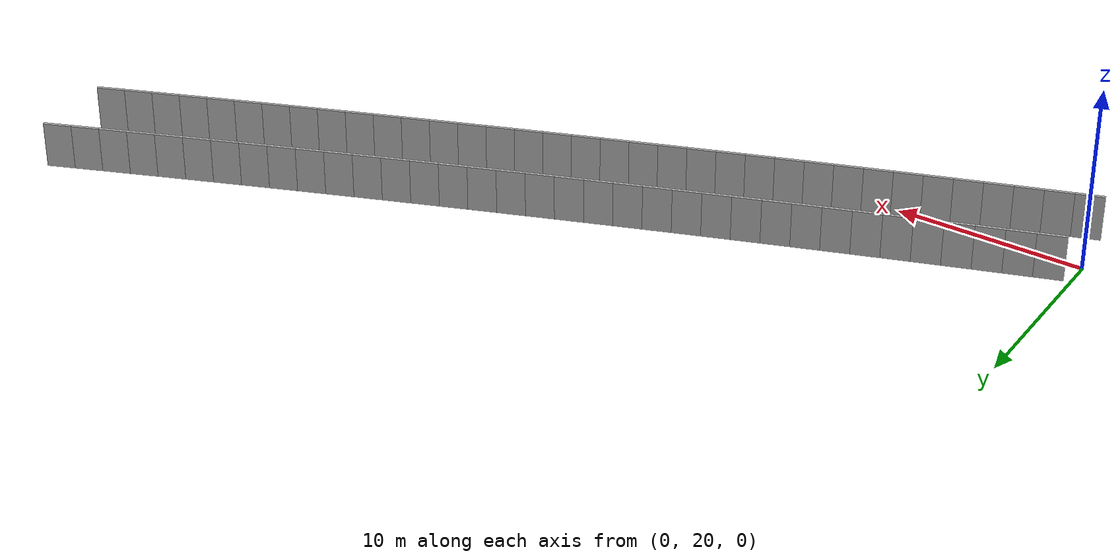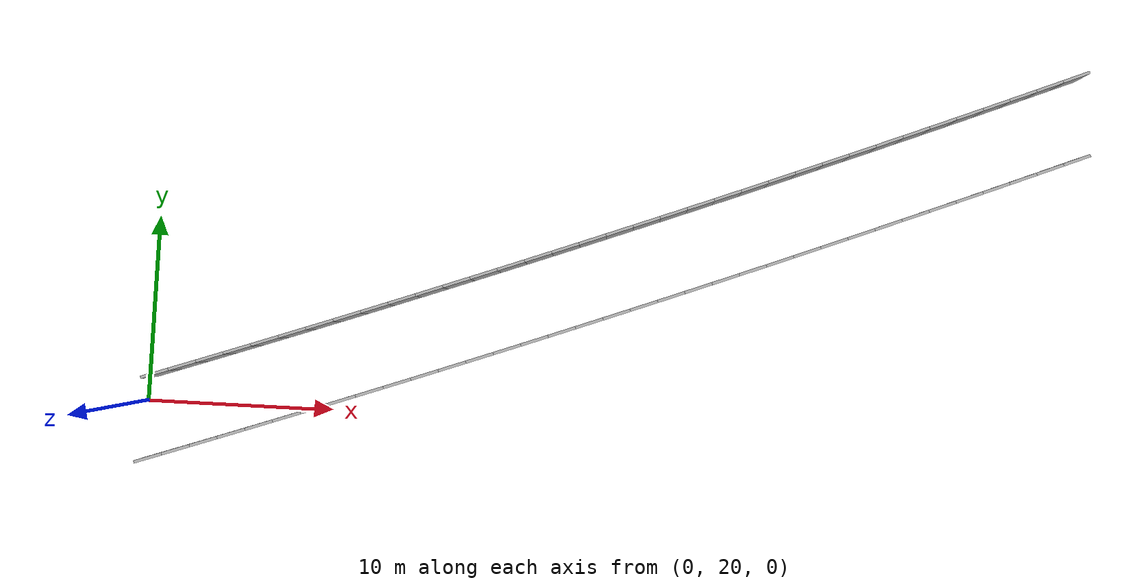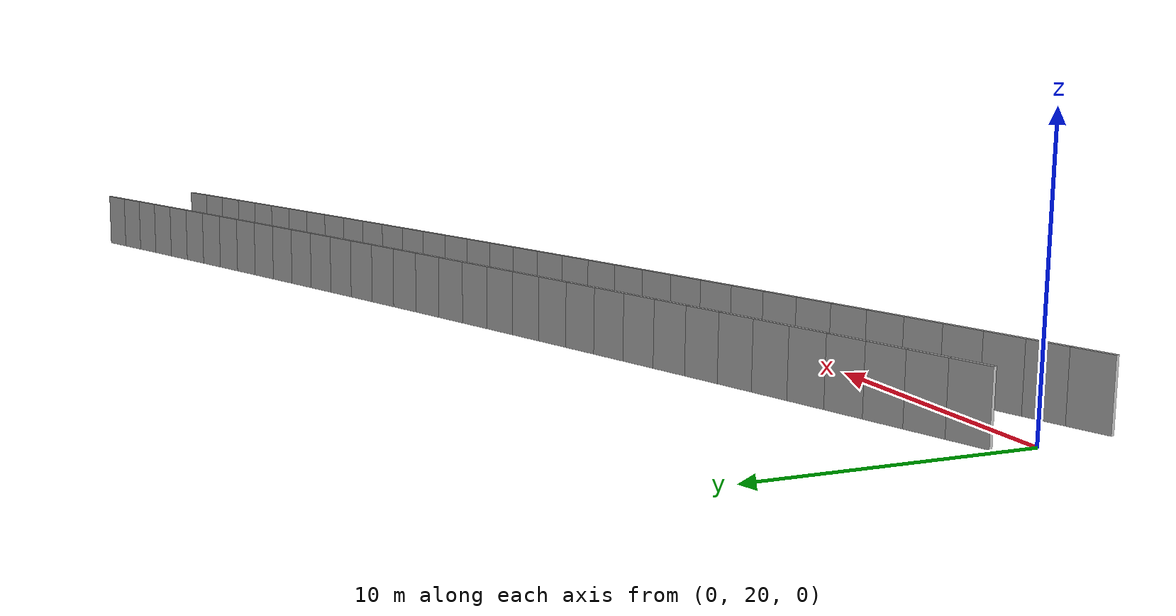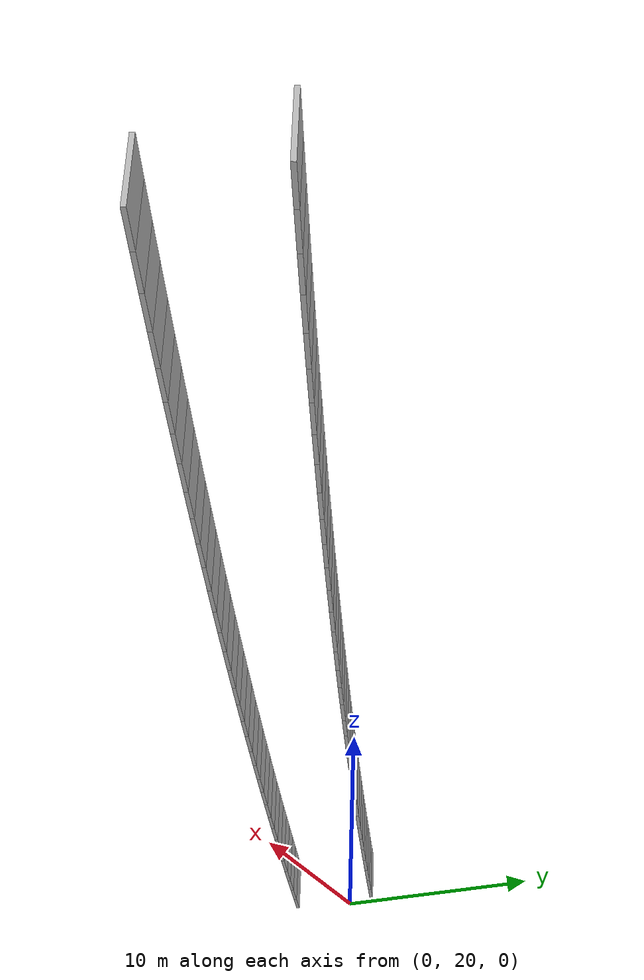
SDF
<?xml version="1.0" ?>
<sdf version="1.6">
  <model name="sps_3204">
    <pose frame="">0 0 0 0 -0 0</pose>
    <static>1</static>
    <self_collide>0</self_collide>
    <allow_auto_disable>0</allow_auto_disable>
    <link name="Wall3876">
      <kinematic>0</kinematic>
      <gravity>1</gravity>
      <self_collide>0</self_collide>
      <collision name="collision">
        <geometry>
          <box>
            <size>1.49652 0.15 2.5</size>
          </box>
        </geometry>
        <pose frame="">0 0 0 0 -0 0</pose>
      </collision>
      <visual name="visual">
        <geometry>
          <box>
            <size>1.49652 0.15 2.5</size>
          </box>
        </geometry>
        <pose frame="">0 0 0 0 -0 0</pose>
        <cast_shadows>1</cast_shadows>
        <transparency>0.0</transparency>
      </visual>
      <pose frame="">1.07986 21.6267 1.25 0 -0 0.335254</pose>
    </link>
    <link name="Wall3877">
      <kinematic>0</kinematic>
      <gravity>1</gravity>
      <self_collide>0</self_collide>
      <collision name="collision">
        <geometry>
          <box>
            <size>1.49661 0.15 2.5</size>
          </box>
        </geometry>
        <pose frame="">0 0 0 0 -0 0</pose>
      </collision>
      <visual name="visual">
        <geometry>
          <box>
            <size>1.49661 0.15 2.5</size>
          </box>
        </geometry>
        <pose frame="">0 0 0 0 -0 0</pose>
        <cast_shadows>1</cast_shadows>
        <transparency>0.0</transparency>
      </visual>
      <pose frame="">2.49276 22.1201 1.25 0 -0 0.336659</pose>
    </link>
    <link name="Wall3878">
      <kinematic>0</kinematic>
      <gravity>1</gravity>
      <self_collide>0</self_collide>
      <collision name="collision">
        <geometry>
          <box>
            <size>1.49656 0.15 2.5</size>
          </box>
        </geometry>
        <pose frame="">0 0 0 0 -0 0</pose>
      </collision>
      <visual name="visual">
        <geometry>
          <box>
            <size>1.49656 0.15 2.5</size>
          </box>
        </geometry>
        <pose frame="">0 0 0 0 -0 0</pose>
        <cast_shadows>1</cast_shadows>
        <transparency>0.0</transparency>
      </visual>
      <pose frame="">3.90487 22.6158 1.25 0 -0 0.33853</pose>
    </link>
    <link name="Wall3879">
      <kinematic>0</kinematic>
      <gravity>1</gravity>
      <self_collide>0</self_collide>
      <collision name="collision">
        <geometry>
          <box>
            <size>1.49636 0.15 2.5</size>
          </box>
        </geometry>
        <pose frame="">0 0 0 0 -0 0</pose>
      </collision>
      <visual name="visual">
        <geometry>
          <box>
            <size>1.49636 0.15 2.5</size>
          </box>
        </geometry>
        <pose frame="">0 0 0 0 -0 0</pose>
        <cast_shadows>1</cast_shadows>
        <transparency>0.0</transparency>
      </visual>
      <pose frame="">5.31606 23.1137 1.25 0 -0 0.339874</pose>
    </link>
    <link name="Wall3880">
      <kinematic>0</kinematic>
      <gravity>1</gravity>
      <self_collide>0</self_collide>
      <collision name="collision">
        <geometry>
          <box>
            <size>1.49645 0.15 2.5</size>
          </box>
        </geometry>
        <pose frame="">0 0 0 0 -0 0</pose>
      </collision>
      <visual name="visual">
        <geometry>
          <box>
            <size>1.49645 0.15 2.5</size>
          </box>
        </geometry>
        <pose frame="">0 0 0 0 -0 0</pose>
        <cast_shadows>1</cast_shadows>
        <transparency>0.0</transparency>
      </visual>
      <pose frame="">6.72646 23.6137 1.25 0 -0 0.341498</pose>
    </link>
    <link name="Wall3881">
      <kinematic>0</kinematic>
      <gravity>1</gravity>
      <self_collide>0</self_collide>
      <collision name="collision">
        <geometry>
          <box>
            <size>1.49664 0.15 2.5</size>
          </box>
        </geometry>
        <pose frame="">0 0 0 0 -0 0</pose>
      </collision>
      <visual name="visual">
        <geometry>
          <box>
            <size>1.49664 0.15 2.5</size>
          </box>
        </geometry>
        <pose frame="">0 0 0 0 -0 0</pose>
        <cast_shadows>1</cast_shadows>
        <transparency>0.0</transparency>
      </visual>
      <pose frame="">8.13616 24.1161 1.25 0 -0 0.343186</pose>
    </link>
    <link name="Wall3882">
      <kinematic>0</kinematic>
      <gravity>1</gravity>
      <self_collide>0</self_collide>
      <collision name="collision">
        <geometry>
          <box>
            <size>1.49646 0.15 2.5</size>
          </box>
        </geometry>
        <pose frame="">0 0 0 0 -0 0</pose>
      </collision>
      <visual name="visual">
        <geometry>
          <box>
            <size>1.49646 0.15 2.5</size>
          </box>
        </geometry>
        <pose frame="">0 0 0 0 -0 0</pose>
        <cast_shadows>1</cast_shadows>
        <transparency>0.0</transparency>
      </visual>
      <pose frame="">9.54504 24.6208 1.25 0 -0 0.344788</pose>
    </link>
    <link name="Wall3883">
      <kinematic>0</kinematic>
      <gravity>1</gravity>
      <self_collide>0</self_collide>
      <collision name="collision">
        <geometry>
          <box>
            <size>1.49651 0.15 2.5</size>
          </box>
        </geometry>
        <pose frame="">0 0 0 0 -0 0</pose>
      </collision>
      <visual name="visual">
        <geometry>
          <box>
            <size>1.49651 0.15 2.5</size>
          </box>
        </geometry>
        <pose frame="">0 0 0 0 -0 0</pose>
        <cast_shadows>1</cast_shadows>
        <transparency>0.0</transparency>
      </visual>
      <pose frame="">10.9531 25.1277 1.25 0 -0 0.346335</pose>
    </link>
    <link name="Wall3884">
      <kinematic>0</kinematic>
      <gravity>1</gravity>
      <self_collide>0</self_collide>
      <collision name="collision">
        <geometry>
          <box>
            <size>1.49671 0.15 2.5</size>
          </box>
        </geometry>
        <pose frame="">0 0 0 0 -0 0</pose>
      </collision>
      <visual name="visual">
        <geometry>
          <box>
            <size>1.49671 0.15 2.5</size>
          </box>
        </geometry>
        <pose frame="">0 0 0 0 -0 0</pose>
        <cast_shadows>1</cast_shadows>
        <transparency>0.0</transparency>
      </visual>
      <pose frame="">12.3604 25.6369 1.25 0 -0 0.348022</pose>
    </link>
    <link name="Wall3885">
      <kinematic>0</kinematic>
      <gravity>1</gravity>
      <self_collide>0</self_collide>
      <collision name="collision">
        <geometry>
          <box>
            <size>1.4964 0.15 2.5</size>
          </box>
        </geometry>
        <pose frame="">0 0 0 0 -0 0</pose>
      </collision>
      <visual name="visual">
        <geometry>
          <box>
            <size>1.4964 0.15 2.5</size>
          </box>
        </geometry>
        <pose frame="">0 0 0 0 -0 0</pose>
        <cast_shadows>1</cast_shadows>
        <transparency>0.0</transparency>
      </visual>
      <pose frame="">13.7669 26.1482 1.25 0 -0 0.349356</pose>
    </link>
    <link name="Wall3886">
      <kinematic>0</kinematic>
      <gravity>1</gravity>
      <self_collide>0</self_collide>
      <collision name="collision">
        <geometry>
          <box>
            <size>1.49647 0.15 2.5</size>
          </box>
        </geometry>
        <pose frame="">0 0 0 0 -0 0</pose>
      </collision>
      <visual name="visual">
        <geometry>
          <box>
            <size>1.49647 0.15 2.5</size>
          </box>
        </geometry>
        <pose frame="">0 0 0 0 -0 0</pose>
        <cast_shadows>1</cast_shadows>
        <transparency>0.0</transparency>
      </visual>
      <pose frame="">15.1725 26.6616 1.25 0 -0 0.351033</pose>
    </link>
    <link name="Wall3887">
      <kinematic>0</kinematic>
      <gravity>1</gravity>
      <self_collide>0</self_collide>
      <collision name="collision">
        <geometry>
          <box>
            <size>1.49649 0.15 2.5</size>
          </box>
        </geometry>
        <pose frame="">0 0 0 0 -0 0</pose>
      </collision>
      <visual name="visual">
        <geometry>
          <box>
            <size>1.49649 0.15 2.5</size>
          </box>
        </geometry>
        <pose frame="">0 0 0 0 -0 0</pose>
        <cast_shadows>1</cast_shadows>
        <transparency>0.0</transparency>
      </visual>
      <pose frame="">16.5773 27.1774 1.25 0 -0 0.352722</pose>
    </link>
    <link name="Wall3888">
      <kinematic>0</kinematic>
      <gravity>1</gravity>
      <self_collide>0</self_collide>
      <collision name="collision">
        <geometry>
          <box>
            <size>1.49652 0.15 2.5</size>
          </box>
        </geometry>
        <pose frame="">0 0 0 0 -0 0</pose>
      </collision>
      <visual name="visual">
        <geometry>
          <box>
            <size>1.49652 0.15 2.5</size>
          </box>
        </geometry>
        <pose frame="">0 0 0 0 -0 0</pose>
        <cast_shadows>1</cast_shadows>
        <transparency>0.0</transparency>
      </visual>
      <pose frame="">17.9813 27.6954 1.25 0 -0 0.354193</pose>
    </link>
    <link name="Wall3889">
      <kinematic>0</kinematic>
      <gravity>1</gravity>
      <self_collide>0</self_collide>
      <collision name="collision">
        <geometry>
          <box>
            <size>1.49652 0.15 2.5</size>
          </box>
        </geometry>
        <pose frame="">0 0 0 0 -0 0</pose>
      </collision>
      <visual name="visual">
        <geometry>
          <box>
            <size>1.49652 0.15 2.5</size>
          </box>
        </geometry>
        <pose frame="">0 0 0 0 -0 0</pose>
        <cast_shadows>1</cast_shadows>
        <transparency>0.0</transparency>
      </visual>
      <pose frame="">19.3845 28.2156 1.25 0 -0 0.355845</pose>
    </link>
    <link name="Wall3890">
      <kinematic>0</kinematic>
      <gravity>1</gravity>
      <self_collide>0</self_collide>
      <collision name="collision">
        <geometry>
          <box>
            <size>1.49663 0.15 2.5</size>
          </box>
        </geometry>
        <pose frame="">0 0 0 0 -0 0</pose>
      </collision>
      <visual name="visual">
        <geometry>
          <box>
            <size>1.49663 0.15 2.5</size>
          </box>
        </geometry>
        <pose frame="">0 0 0 0 -0 0</pose>
        <cast_shadows>1</cast_shadows>
        <transparency>0.0</transparency>
      </visual>
      <pose frame="">20.7869 28.7381 1.25 0 -0 0.357429</pose>
    </link>
    <link name="Wall3891">
      <kinematic>0</kinematic>
      <gravity>1</gravity>
      <self_collide>0</self_collide>
      <collision name="collision">
        <geometry>
          <box>
            <size>1.4966 0.15 2.5</size>
          </box>
        </geometry>
        <pose frame="">0 0 0 0 -0 0</pose>
      </collision>
      <visual name="visual">
        <geometry>
          <box>
            <size>1.4966 0.15 2.5</size>
          </box>
        </geometry>
        <pose frame="">0 0 0 0 -0 0</pose>
        <cast_shadows>1</cast_shadows>
        <transparency>0.0</transparency>
      </visual>
      <pose frame="">22.1885 29.2628 1.25 0 -0 0.359005</pose>
    </link>
    <link name="Wall3892">
      <kinematic>0</kinematic>
      <gravity>1</gravity>
      <self_collide>0</self_collide>
      <collision name="collision">
        <geometry>
          <box>
            <size>1.49661 0.15 2.5</size>
          </box>
        </geometry>
        <pose frame="">0 0 0 0 -0 0</pose>
      </collision>
      <visual name="visual">
        <geometry>
          <box>
            <size>1.49661 0.15 2.5</size>
          </box>
        </geometry>
        <pose frame="">0 0 0 0 -0 0</pose>
        <cast_shadows>1</cast_shadows>
        <transparency>0.0</transparency>
      </visual>
      <pose frame="">23.5893 29.7897 1.25 0 -0 0.360527</pose>
    </link>
    <link name="Wall3893">
      <kinematic>0</kinematic>
      <gravity>1</gravity>
      <self_collide>0</self_collide>
      <collision name="collision">
        <geometry>
          <box>
            <size>1.49649 0.15 2.5</size>
          </box>
        </geometry>
        <pose frame="">0 0 0 0 -0 0</pose>
      </collision>
      <visual name="visual">
        <geometry>
          <box>
            <size>1.49649 0.15 2.5</size>
          </box>
        </geometry>
        <pose frame="">0 0 0 0 -0 0</pose>
        <cast_shadows>1</cast_shadows>
        <transparency>0.0</transparency>
      </visual>
      <pose frame="">24.9892 30.3188 1.25 0 -0 0.362169</pose>
    </link>
    <link name="Wall3894">
      <kinematic>0</kinematic>
      <gravity>1</gravity>
      <self_collide>0</self_collide>
      <collision name="collision">
        <geometry>
          <box>
            <size>1.49653 0.15 2.5</size>
          </box>
        </geometry>
        <pose frame="">0 0 0 0 -0 0</pose>
      </collision>
      <visual name="visual">
        <geometry>
          <box>
            <size>1.49653 0.15 2.5</size>
          </box>
        </geometry>
        <pose frame="">0 0 0 0 -0 0</pose>
        <cast_shadows>1</cast_shadows>
        <transparency>0.0</transparency>
      </visual>
      <pose frame="">26.3882 30.8501 1.25 0 -0 0.36373</pose>
    </link>
    <link name="Wall3895">
      <kinematic>0</kinematic>
      <gravity>1</gravity>
      <self_collide>0</self_collide>
      <collision name="collision">
        <geometry>
          <box>
            <size>1.49658 0.15 2.5</size>
          </box>
        </geometry>
        <pose frame="">0 0 0 0 -0 0</pose>
      </collision>
      <visual name="visual">
        <geometry>
          <box>
            <size>1.49658 0.15 2.5</size>
          </box>
        </geometry>
        <pose frame="">0 0 0 0 -0 0</pose>
        <cast_shadows>1</cast_shadows>
        <transparency>0.0</transparency>
      </visual>
      <pose frame="">27.7864 31.3837 1.25 0 -0 0.36542</pose>
    </link>
    <link name="Wall3896">
      <kinematic>0</kinematic>
      <gravity>1</gravity>
      <self_collide>0</self_collide>
      <collision name="collision">
        <geometry>
          <box>
            <size>1.49639 0.15 2.5</size>
          </box>
        </geometry>
        <pose frame="">0 0 0 0 -0 0</pose>
      </collision>
      <visual name="visual">
        <geometry>
          <box>
            <size>1.49639 0.15 2.5</size>
          </box>
        </geometry>
        <pose frame="">0 0 0 0 -0 0</pose>
        <cast_shadows>1</cast_shadows>
        <transparency>0.0</transparency>
      </visual>
      <pose frame="">29.1836 31.9195 1.25 0 -0 0.36691</pose>
    </link>
    <link name="Wall3897">
      <kinematic>0</kinematic>
      <gravity>1</gravity>
      <self_collide>0</self_collide>
      <collision name="collision">
        <geometry>
          <box>
            <size>1.4965 0.15 2.5</size>
          </box>
        </geometry>
        <pose frame="">0 0 0 0 -0 0</pose>
      </collision>
      <visual name="visual">
        <geometry>
          <box>
            <size>1.4965 0.15 2.5</size>
          </box>
        </geometry>
        <pose frame="">0 0 0 0 -0 0</pose>
        <cast_shadows>1</cast_shadows>
        <transparency>0.0</transparency>
      </visual>
      <pose frame="">30.58 32.4575 1.25 0 -0 0.368585</pose>
    </link>
    <link name="Wall3898">
      <kinematic>0</kinematic>
      <gravity>1</gravity>
      <self_collide>0</self_collide>
      <collision name="collision">
        <geometry>
          <box>
            <size>1.49649 0.15 2.5</size>
          </box>
        </geometry>
        <pose frame="">0 0 0 0 -0 0</pose>
      </collision>
      <visual name="visual">
        <geometry>
          <box>
            <size>1.49649 0.15 2.5</size>
          </box>
        </geometry>
        <pose frame="">0 0 0 0 -0 0</pose>
        <cast_shadows>1</cast_shadows>
        <transparency>0.0</transparency>
      </visual>
      <pose frame="">31.9756 32.9977 1.25 0 -0 0.370032</pose>
    </link>
    <link name="Wall3899">
      <kinematic>0</kinematic>
      <gravity>1</gravity>
      <self_collide>0</self_collide>
      <collision name="collision">
        <geometry>
          <box>
            <size>1.49657 0.15 2.5</size>
          </box>
        </geometry>
        <pose frame="">0 0 0 0 -0 0</pose>
      </collision>
      <visual name="visual">
        <geometry>
          <box>
            <size>1.49657 0.15 2.5</size>
          </box>
        </geometry>
        <pose frame="">0 0 0 0 -0 0</pose>
        <cast_shadows>1</cast_shadows>
        <transparency>0.0</transparency>
      </visual>
      <pose frame="">33.3704 33.54 1.25 0 -0 0.37163</pose>
    </link>
    <link name="Wall3900">
      <kinematic>0</kinematic>
      <gravity>1</gravity>
      <self_collide>0</self_collide>
      <collision name="collision">
        <geometry>
          <box>
            <size>1.49668 0.15 2.5</size>
          </box>
        </geometry>
        <pose frame="">0 0 0 0 -0 0</pose>
      </collision>
      <visual name="visual">
        <geometry>
          <box>
            <size>1.49668 0.15 2.5</size>
          </box>
        </geometry>
        <pose frame="">0 0 0 0 -0 0</pose>
        <cast_shadows>1</cast_shadows>
        <transparency>0.0</transparency>
      </visual>
      <pose frame="">34.7645 34.0846 1.25 0 -0 0.373267</pose>
    </link>
    <link name="Wall3901">
      <kinematic>0</kinematic>
      <gravity>1</gravity>
      <self_collide>0</self_collide>
      <collision name="collision">
        <geometry>
          <box>
            <size>1.49645 0.15 2.5</size>
          </box>
        </geometry>
        <pose frame="">0 0 0 0 -0 0</pose>
      </collision>
      <visual name="visual">
        <geometry>
          <box>
            <size>1.49645 0.15 2.5</size>
          </box>
        </geometry>
        <pose frame="">0 0 0 0 -0 0</pose>
        <cast_shadows>1</cast_shadows>
        <transparency>0.0</transparency>
      </visual>
      <pose frame="">36.1576 34.6314 1.25 0 -0 0.374773</pose>
    </link>
    <link name="Wall3902">
      <kinematic>0</kinematic>
      <gravity>1</gravity>
      <self_collide>0</self_collide>
      <collision name="collision">
        <geometry>
          <box>
            <size>1.49643 0.15 2.5</size>
          </box>
        </geometry>
        <pose frame="">0 0 0 0 -0 0</pose>
      </collision>
      <visual name="visual">
        <geometry>
          <box>
            <size>1.49643 0.15 2.5</size>
          </box>
        </geometry>
        <pose frame="">0 0 0 0 -0 0</pose>
        <cast_shadows>1</cast_shadows>
        <transparency>0.0</transparency>
      </visual>
      <pose frame="">37.5496 35.1804 1.25 0 -0 0.37653</pose>
    </link>
    <link name="Wall3903">
      <kinematic>0</kinematic>
      <gravity>1</gravity>
      <self_collide>0</self_collide>
      <collision name="collision">
        <geometry>
          <box>
            <size>1.49658 0.15 2.5</size>
          </box>
        </geometry>
        <pose frame="">0 0 0 0 -0 0</pose>
      </collision>
      <visual name="visual">
        <geometry>
          <box>
            <size>1.49658 0.15 2.5</size>
          </box>
        </geometry>
        <pose frame="">0 0 0 0 -0 0</pose>
        <cast_shadows>1</cast_shadows>
        <transparency>0.0</transparency>
      </visual>
      <pose frame="">38.9409 35.7316 1.25 0 -0 0.377894</pose>
    </link>
    <link name="Wall3904">
      <kinematic>0</kinematic>
      <gravity>1</gravity>
      <self_collide>0</self_collide>
      <collision name="collision">
        <geometry>
          <box>
            <size>1.49656 0.15 2.5</size>
          </box>
        </geometry>
        <pose frame="">0 0 0 0 -0 0</pose>
      </collision>
      <visual name="visual">
        <geometry>
          <box>
            <size>1.49656 0.15 2.5</size>
          </box>
        </geometry>
        <pose frame="">0 0 0 0 -0 0</pose>
        <cast_shadows>1</cast_shadows>
        <transparency>0.0</transparency>
      </visual>
      <pose frame="">40.3314 36.285 1.25 0 -0 0.379613</pose>
    </link>
    <link name="Wall3905">
      <kinematic>0</kinematic>
      <gravity>1</gravity>
      <self_collide>0</self_collide>
      <collision name="collision">
        <geometry>
          <box>
            <size>1.49666 0.15 2.5</size>
          </box>
        </geometry>
        <pose frame="">0 0 0 0 -0 0</pose>
      </collision>
      <visual name="visual">
        <geometry>
          <box>
            <size>1.49666 0.15 2.5</size>
          </box>
        </geometry>
        <pose frame="">0 0 0 0 -0 0</pose>
        <cast_shadows>1</cast_shadows>
        <transparency>0.0</transparency>
      </visual>
      <pose frame="">41.7211 36.8407 1.25 0 -0 0.381211</pose>
    </link>
    <link name="Wall3906">
      <kinematic>0</kinematic>
      <gravity>1</gravity>
      <self_collide>0</self_collide>
      <collision name="collision">
        <geometry>
          <box>
            <size>1.49642 0.15 2.5</size>
          </box>
        </geometry>
        <pose frame="">0 0 0 0 -0 0</pose>
      </collision>
      <visual name="visual">
        <geometry>
          <box>
            <size>1.49642 0.15 2.5</size>
          </box>
        </geometry>
        <pose frame="">0 0 0 0 -0 0</pose>
        <cast_shadows>1</cast_shadows>
        <transparency>0.0</transparency>
      </visual>
      <pose frame="">43.1098 37.3985 1.25 0 -0 0.38268</pose>
    </link>
    <link name="Wall3907">
      <kinematic>0</kinematic>
      <gravity>1</gravity>
      <self_collide>0</self_collide>
      <collision name="collision">
        <geometry>
          <box>
            <size>1.49636 0.15 2.5</size>
          </box>
        </geometry>
        <pose frame="">0 0 0 0 -0 0</pose>
      </collision>
      <visual name="visual">
        <geometry>
          <box>
            <size>1.49636 0.15 2.5</size>
          </box>
        </geometry>
        <pose frame="">0 0 0 0 -0 0</pose>
        <cast_shadows>1</cast_shadows>
        <transparency>0.0</transparency>
      </visual>
      <pose frame="">44.4975 37.9584 1.25 0 -0 0.384324</pose>
    </link>
    <link name="Wall3908">
      <kinematic>0</kinematic>
      <gravity>1</gravity>
      <self_collide>0</self_collide>
      <collision name="collision">
        <geometry>
          <box>
            <size>1.49643 0.15 2.5</size>
          </box>
        </geometry>
        <pose frame="">0 0 0 0 -0 0</pose>
      </collision>
      <visual name="visual">
        <geometry>
          <box>
            <size>1.49643 0.15 2.5</size>
          </box>
        </geometry>
        <pose frame="">0 0 0 0 -0 0</pose>
        <cast_shadows>1</cast_shadows>
        <transparency>0.0</transparency>
      </visual>
      <pose frame="">45.8843 38.5205 1.25 0 -0 0.385846</pose>
    </link>
    <link name="Wall3909">
      <kinematic>0</kinematic>
      <gravity>1</gravity>
      <self_collide>0</self_collide>
      <collision name="collision">
        <geometry>
          <box>
            <size>1.49679 0.15 2.5</size>
          </box>
        </geometry>
        <pose frame="">0 0 0 0 -0 0</pose>
      </collision>
      <visual name="visual">
        <geometry>
          <box>
            <size>1.49679 0.15 2.5</size>
          </box>
        </geometry>
        <pose frame="">0 0 0 0 -0 0</pose>
        <cast_shadows>1</cast_shadows>
        <transparency>0.0</transparency>
      </visual>
      <pose frame="">47.2704 39.0849 1.25 0 -0 0.387511</pose>
    </link>
    <link name="Wall3910">
      <kinematic>0</kinematic>
      <gravity>1</gravity>
      <self_collide>0</self_collide>
      <collision name="collision">
        <geometry>
          <box>
            <size>1.49649 0.15 2.5</size>
          </box>
        </geometry>
        <pose frame="">0 0 0 0 -0 0</pose>
      </collision>
      <visual name="visual">
        <geometry>
          <box>
            <size>1.49649 0.15 2.5</size>
          </box>
        </geometry>
        <pose frame="">0 0 0 0 -0 0</pose>
        <cast_shadows>1</cast_shadows>
        <transparency>0.0</transparency>
      </visual>
      <pose frame="">48.6556 39.6516 1.25 0 -0 0.389178</pose>
    </link>
    <link name="Wall7650">
      <kinematic>0</kinematic>
      <gravity>1</gravity>
      <self_collide>0</self_collide>
      <collision name="collision">
        <geometry>
          <box>
            <size>1.50309 0.15 2.5</size>
          </box>
        </geometry>
        <pose frame="">0 0 0 0 -0 0</pose>
      </collision>
      <visual name="visual">
        <geometry>
          <box>
            <size>1.50309 0.15 2.5</size>
          </box>
        </geometry>
        <pose frame="">0 0 0 0 -0 0</pose>
        <cast_shadows>1</cast_shadows>
        <transparency>0.0</transparency>
      </visual>
      <pose frame="">1.02434 17.224 1.25 0 -0 0.333603</pose>
    </link>
    <link name="Wall7651">
      <kinematic>0</kinematic>
      <gravity>1</gravity>
      <self_collide>0</self_collide>
      <collision name="collision">
        <geometry>
          <box>
            <size>1.50307 0.15 2.5</size>
          </box>
        </geometry>
        <pose frame="">0 0 0 0 -0 0</pose>
      </collision>
      <visual name="visual">
        <geometry>
          <box>
            <size>1.50307 0.15 2.5</size>
          </box>
        </geometry>
        <pose frame="">0 0 0 0 -0 0</pose>
        <cast_shadows>1</cast_shadows>
        <transparency>0.0</transparency>
      </visual>
      <pose frame="">2.44414 17.7174 1.25 0 -0 0.335285</pose>
    </link>
    <link name="Wall7652">
      <kinematic>0</kinematic>
      <gravity>1</gravity>
      <self_collide>0</self_collide>
      <collision name="collision">
        <geometry>
          <box>
            <size>1.50312 0.15 2.5</size>
          </box>
        </geometry>
        <pose frame="">0 0 0 0 -0 0</pose>
      </collision>
      <visual name="visual">
        <geometry>
          <box>
            <size>1.50312 0.15 2.5</size>
          </box>
        </geometry>
        <pose frame="">0 0 0 0 -0 0</pose>
        <cast_shadows>1</cast_shadows>
        <transparency>0.0</transparency>
      </visual>
      <pose frame="">3.86315 18.2131 1.25 0 -0 0.336865</pose>
    </link>
    <link name="Wall7653">
      <kinematic>0</kinematic>
      <gravity>1</gravity>
      <self_collide>0</self_collide>
      <collision name="collision">
        <geometry>
          <box>
            <size>1.5032 0.15 2.5</size>
          </box>
        </geometry>
        <pose frame="">0 0 0 0 -0 0</pose>
      </collision>
      <visual name="visual">
        <geometry>
          <box>
            <size>1.5032 0.15 2.5</size>
          </box>
        </geometry>
        <pose frame="">0 0 0 0 -0 0</pose>
        <cast_shadows>1</cast_shadows>
        <transparency>0.0</transparency>
      </visual>
      <pose frame="">5.28146 18.711 1.25 0 -0 0.338353</pose>
    </link>
    <link name="Wall7654">
      <kinematic>0</kinematic>
      <gravity>1</gravity>
      <self_collide>0</self_collide>
      <collision name="collision">
        <geometry>
          <box>
            <size>1.50303 0.15 2.5</size>
          </box>
        </geometry>
        <pose frame="">0 0 0 0 -0 0</pose>
      </collision>
      <visual name="visual">
        <geometry>
          <box>
            <size>1.50303 0.15 2.5</size>
          </box>
        </geometry>
        <pose frame="">0 0 0 0 -0 0</pose>
        <cast_shadows>1</cast_shadows>
        <transparency>0.0</transparency>
      </visual>
      <pose frame="">6.69894 19.2111 1.25 0 -0 0.339986</pose>
    </link>
    <link name="Wall7655">
      <kinematic>0</kinematic>
      <gravity>1</gravity>
      <self_collide>0</self_collide>
      <collision name="collision">
        <geometry>
          <box>
            <size>1.50301 0.15 2.5</size>
          </box>
        </geometry>
        <pose frame="">0 0 0 0 -0 0</pose>
      </collision>
      <visual name="visual">
        <geometry>
          <box>
            <size>1.50301 0.15 2.5</size>
          </box>
        </geometry>
        <pose frame="">0 0 0 0 -0 0</pose>
        <cast_shadows>1</cast_shadows>
        <transparency>0.0</transparency>
      </visual>
      <pose frame="">8.11553 19.7134 1.25 0 -0 0.341541</pose>
    </link>
    <link name="Wall7656">
      <kinematic>0</kinematic>
      <gravity>1</gravity>
      <self_collide>0</self_collide>
      <collision name="collision">
        <geometry>
          <box>
            <size>1.50329 0.15 2.5</size>
          </box>
        </geometry>
        <pose frame="">0 0 0 0 -0 0</pose>
      </collision>
      <visual name="visual">
        <geometry>
          <box>
            <size>1.50329 0.15 2.5</size>
          </box>
        </geometry>
        <pose frame="">0 0 0 0 -0 0</pose>
        <cast_shadows>1</cast_shadows>
        <transparency>0.0</transparency>
      </visual>
      <pose frame="">9.53146 20.218 1.25 0 -0 0.343155</pose>
    </link>
    <link name="Wall7657">
      <kinematic>0</kinematic>
      <gravity>1</gravity>
      <self_collide>0</self_collide>
      <collision name="collision">
        <geometry>
          <box>
            <size>1.503 0.15 2.5</size>
          </box>
        </geometry>
        <pose frame="">0 0 0 0 -0 0</pose>
      </collision>
      <visual name="visual">
        <geometry>
          <box>
            <size>1.503 0.15 2.5</size>
          </box>
        </geometry>
        <pose frame="">0 0 0 0 -0 0</pose>
        <cast_shadows>1</cast_shadows>
        <transparency>0.0</transparency>
      </visual>
      <pose frame="">10.9466 20.7249 1.25 0 -0 0.344778</pose>
    </link>
    <link name="Wall7658">
      <kinematic>0</kinematic>
      <gravity>1</gravity>
      <self_collide>0</self_collide>
      <collision name="collision">
        <geometry>
          <box>
            <size>1.50306 0.15 2.5</size>
          </box>
        </geometry>
        <pose frame="">0 0 0 0 -0 0</pose>
      </collision>
      <visual name="visual">
        <geometry>
          <box>
            <size>1.50306 0.15 2.5</size>
          </box>
        </geometry>
        <pose frame="">0 0 0 0 -0 0</pose>
        <cast_shadows>1</cast_shadows>
        <transparency>0.0</transparency>
      </visual>
      <pose frame="">12.3607 21.234 1.25 0 -0 0.346318</pose>
    </link>
    <link name="Wall7659">
      <kinematic>0</kinematic>
      <gravity>1</gravity>
      <self_collide>0</self_collide>
      <collision name="collision">
        <geometry>
          <box>
            <size>1.50306 0.15 2.5</size>
          </box>
        </geometry>
        <pose frame="">0 0 0 0 -0 0</pose>
      </collision>
      <visual name="visual">
        <geometry>
          <box>
            <size>1.50306 0.15 2.5</size>
          </box>
        </geometry>
        <pose frame="">0 0 0 0 -0 0</pose>
        <cast_shadows>1</cast_shadows>
        <transparency>0.0</transparency>
      </visual>
      <pose frame="">13.7742 21.7453 1.25 0 -0 0.347872</pose>
    </link>
    <link name="Wall7660">
      <kinematic>0</kinematic>
      <gravity>1</gravity>
      <self_collide>0</self_collide>
      <collision name="collision">
        <geometry>
          <box>
            <size>1.50301 0.15 2.5</size>
          </box>
        </geometry>
        <pose frame="">0 0 0 0 -0 0</pose>
      </collision>
      <visual name="visual">
        <geometry>
          <box>
            <size>1.50301 0.15 2.5</size>
          </box>
        </geometry>
        <pose frame="">0 0 0 0 -0 0</pose>
        <cast_shadows>1</cast_shadows>
        <transparency>0.0</transparency>
      </visual>
      <pose frame="">15.1868 22.2588 1.25 0 -0 0.349441</pose>
    </link>
    <link name="Wall7661">
      <kinematic>0</kinematic>
      <gravity>1</gravity>
      <self_collide>0</self_collide>
      <collision name="collision">
        <geometry>
          <box>
            <size>1.50316 0.15 2.5</size>
          </box>
        </geometry>
        <pose frame="">0 0 0 0 -0 0</pose>
      </collision>
      <visual name="visual">
        <geometry>
          <box>
            <size>1.50316 0.15 2.5</size>
          </box>
        </geometry>
        <pose frame="">0 0 0 0 -0 0</pose>
        <cast_shadows>1</cast_shadows>
        <transparency>0.0</transparency>
      </visual>
      <pose frame="">16.5986 22.7746 1.25 0 -0 0.351133</pose>
    </link>
    <link name="Wall7662">
      <kinematic>0</kinematic>
      <gravity>1</gravity>
      <self_collide>0</self_collide>
      <collision name="collision">
        <geometry>
          <box>
            <size>1.50303 0.15 2.5</size>
          </box>
        </geometry>
        <pose frame="">0 0 0 0 -0 0</pose>
      </collision>
      <visual name="visual">
        <geometry>
          <box>
            <size>1.50303 0.15 2.5</size>
          </box>
        </geometry>
        <pose frame="">0 0 0 0 -0 0</pose>
        <cast_shadows>1</cast_shadows>
        <transparency>0.0</transparency>
      </visual>
      <pose frame="">18.0096 23.2926 1.25 0 -0 0.352549</pose>
    </link>
    <link name="Wall7663">
      <kinematic>0</kinematic>
      <gravity>1</gravity>
      <self_collide>0</self_collide>
      <collision name="collision">
        <geometry>
          <box>
            <size>1.50313 0.15 2.5</size>
          </box>
        </geometry>
        <pose frame="">0 0 0 0 -0 0</pose>
      </collision>
      <visual name="visual">
        <geometry>
          <box>
            <size>1.50313 0.15 2.5</size>
          </box>
        </geometry>
        <pose frame="">0 0 0 0 -0 0</pose>
        <cast_shadows>1</cast_shadows>
        <transparency>0.0</transparency>
      </visual>
      <pose frame="">19.4198 23.8128 1.25 0 -0 0.354256</pose>
    </link>
    <link name="Wall7664">
      <kinematic>0</kinematic>
      <gravity>1</gravity>
      <self_collide>0</self_collide>
      <collision name="collision">
        <geometry>
          <box>
            <size>1.50298 0.15 2.5</size>
          </box>
        </geometry>
        <pose frame="">0 0 0 0 -0 0</pose>
      </collision>
      <visual name="visual">
        <geometry>
          <box>
            <size>1.50298 0.15 2.5</size>
          </box>
        </geometry>
        <pose frame="">0 0 0 0 -0 0</pose>
        <cast_shadows>1</cast_shadows>
        <transparency>0.0</transparency>
      </visual>
      <pose frame="">20.8291 24.3353 1.25 0 -0 0.355852</pose>
    </link>
    <link name="Wall7665">
      <kinematic>0</kinematic>
      <gravity>1</gravity>
      <self_collide>0</self_collide>
      <collision name="collision">
        <geometry>
          <box>
            <size>1.50323 0.15 2.5</size>
          </box>
        </geometry>
        <pose frame="">0 0 0 0 -0 0</pose>
      </collision>
      <visual name="visual">
        <geometry>
          <box>
            <size>1.50323 0.15 2.5</size>
          </box>
        </geometry>
        <pose frame="">0 0 0 0 -0 0</pose>
        <cast_shadows>1</cast_shadows>
        <transparency>0.0</transparency>
      </visual>
      <pose frame="">22.2376 24.8601 1.25 0 -0 0.357478</pose>
    </link>
    <link name="Wall7666">
      <kinematic>0</kinematic>
      <gravity>1</gravity>
      <self_collide>0</self_collide>
      <collision name="collision">
        <geometry>
          <box>
            <size>1.50295 0.15 2.5</size>
          </box>
        </geometry>
        <pose frame="">0 0 0 0 -0 0</pose>
      </collision>
      <visual name="visual">
        <geometry>
          <box>
            <size>1.50295 0.15 2.5</size>
          </box>
        </geometry>
        <pose frame="">0 0 0 0 -0 0</pose>
        <cast_shadows>1</cast_shadows>
        <transparency>0.0</transparency>
      </visual>
      <pose frame="">23.6453 25.3871 1.25 0 -0 0.358937</pose>
    </link>
    <link name="Wall7667">
      <kinematic>0</kinematic>
      <gravity>1</gravity>
      <self_collide>0</self_collide>
      <collision name="collision">
        <geometry>
          <box>
            <size>1.50329 0.15 2.5</size>
          </box>
        </geometry>
        <pose frame="">0 0 0 0 -0 0</pose>
      </collision>
      <visual name="visual">
        <geometry>
          <box>
            <size>1.50329 0.15 2.5</size>
          </box>
        </geometry>
        <pose frame="">0 0 0 0 -0 0</pose>
        <cast_shadows>1</cast_shadows>
        <transparency>0.0</transparency>
      </visual>
      <pose frame="">25.0521 25.9163 1.25 0 -0 0.360586</pose>
    </link>
    <link name="Wall7668">
      <kinematic>0</kinematic>
      <gravity>1</gravity>
      <self_collide>0</self_collide>
      <collision name="collision">
        <geometry>
          <box>
            <size>1.5031 0.15 2.5</size>
          </box>
        </geometry>
        <pose frame="">0 0 0 0 -0 0</pose>
      </collision>
      <visual name="visual">
        <geometry>
          <box>
            <size>1.5031 0.15 2.5</size>
          </box>
        </geometry>
        <pose frame="">0 0 0 0 -0 0</pose>
        <cast_shadows>1</cast_shadows>
        <transparency>0.0</transparency>
      </visual>
      <pose frame="">26.4582 26.4478 1.25 0 -0 0.362197</pose>
    </link>
    <link name="Wall7669">
      <kinematic>0</kinematic>
      <gravity>1</gravity>
      <self_collide>0</self_collide>
      <collision name="collision">
        <geometry>
          <box>
            <size>1.50299 0.15 2.5</size>
          </box>
        </geometry>
        <pose frame="">0 0 0 0 -0 0</pose>
      </collision>
      <visual name="visual">
        <geometry>
          <box>
            <size>1.50299 0.15 2.5</size>
          </box>
        </geometry>
        <pose frame="">0 0 0 0 -0 0</pose>
        <cast_shadows>1</cast_shadows>
        <transparency>0.0</transparency>
      </visual>
      <pose frame="">27.8633 26.9815 1.25 0 -0 0.363833</pose>
    </link>
    <link name="Wall7670">
      <kinematic>0</kinematic>
      <gravity>1</gravity>
      <self_collide>0</self_collide>
      <collision name="collision">
        <geometry>
          <box>
            <size>1.50311 0.15 2.5</size>
          </box>
        </geometry>
        <pose frame="">0 0 0 0 -0 0</pose>
      </collision>
      <visual name="visual">
        <geometry>
          <box>
            <size>1.50311 0.15 2.5</size>
          </box>
        </geometry>
        <pose frame="">0 0 0 0 -0 0</pose>
        <cast_shadows>1</cast_shadows>
        <transparency>0.0</transparency>
      </visual>
      <pose frame="">29.2676 27.5173 1.25 0 -0 0.365191</pose>
    </link>
    <link name="Wall7671">
      <kinematic>0</kinematic>
      <gravity>1</gravity>
      <self_collide>0</self_collide>
      <collision name="collision">
        <geometry>
          <box>
            <size>1.50305 0.15 2.5</size>
          </box>
        </geometry>
        <pose frame="">0 0 0 0 -0 0</pose>
      </collision>
      <visual name="visual">
        <geometry>
          <box>
            <size>1.50305 0.15 2.5</size>
          </box>
        </geometry>
        <pose frame="">0 0 0 0 -0 0</pose>
        <cast_shadows>1</cast_shadows>
        <transparency>0.0</transparency>
      </visual>
      <pose frame="">30.6711 28.0553 1.25 0 -0 0.366903</pose>
    </link>
    <link name="Wall7672">
      <kinematic>0</kinematic>
      <gravity>1</gravity>
      <self_collide>0</self_collide>
      <collision name="collision">
        <geometry>
          <box>
            <size>1.50317 0.15 2.5</size>
          </box>
        </geometry>
        <pose frame="">0 0 0 0 -0 0</pose>
      </collision>
      <visual name="visual">
        <geometry>
          <box>
            <size>1.50317 0.15 2.5</size>
          </box>
        </geometry>
        <pose frame="">0 0 0 0 -0 0</pose>
        <cast_shadows>1</cast_shadows>
        <transparency>0.0</transparency>
      </visual>
      <pose frame="">32.0738 28.5957 1.25 0 -0 0.36857</pose>
    </link>
    <link name="Wall7673">
      <kinematic>0</kinematic>
      <gravity>1</gravity>
      <self_collide>0</self_collide>
      <collision name="collision">
        <geometry>
          <box>
            <size>1.50312 0.15 2.5</size>
          </box>
        </geometry>
        <pose frame="">0 0 0 0 -0 0</pose>
      </collision>
      <visual name="visual">
        <geometry>
          <box>
            <size>1.50312 0.15 2.5</size>
          </box>
        </geometry>
        <pose frame="">0 0 0 0 -0 0</pose>
        <cast_shadows>1</cast_shadows>
        <transparency>0.0</transparency>
      </visual>
      <pose frame="">33.4755 29.1383 1.25 0 -0 0.370063</pose>
    </link>
    <link name="Wall7674">
      <kinematic>0</kinematic>
      <gravity>1</gravity>
      <self_collide>0</self_collide>
      <collision name="collision">
        <geometry>
          <box>
            <size>1.50304 0.15 2.5</size>
          </box>
        </geometry>
        <pose frame="">0 0 0 0 -0 0</pose>
      </collision>
      <visual name="visual">
        <geometry>
          <box>
            <size>1.50304 0.15 2.5</size>
          </box>
        </geometry>
        <pose frame="">0 0 0 0 -0 0</pose>
        <cast_shadows>1</cast_shadows>
        <transparency>0.0</transparency>
      </visual>
      <pose frame="">34.8765 29.683 1.25 0 -0 0.371608</pose>
    </link>
    <link name="Wall7675">
      <kinematic>0</kinematic>
      <gravity>1</gravity>
      <self_collide>0</self_collide>
      <collision name="collision">
        <geometry>
          <box>
            <size>1.50291 0.15 2.5</size>
          </box>
        </geometry>
        <pose frame="">0 0 0 0 -0 0</pose>
      </collision>
      <visual name="visual">
        <geometry>
          <box>
            <size>1.50291 0.15 2.5</size>
          </box>
        </geometry>
        <pose frame="">0 0 0 0 -0 0</pose>
        <cast_shadows>1</cast_shadows>
        <transparency>0.0</transparency>
      </visual>
      <pose frame="">36.2764 30.23 1.25 0 -0 0.373387</pose>
    </link>
    <link name="Wall7676">
      <kinematic>0</kinematic>
      <gravity>1</gravity>
      <self_collide>0</self_collide>
      <collision name="collision">
        <geometry>
          <box>
            <size>1.50311 0.15 2.5</size>
          </box>
        </geometry>
        <pose frame="">0 0 0 0 -0 0</pose>
      </collision>
      <visual name="visual">
        <geometry>
          <box>
            <size>1.50311 0.15 2.5</size>
          </box>
        </geometry>
        <pose frame="">0 0 0 0 -0 0</pose>
        <cast_shadows>1</cast_shadows>
        <transparency>0.0</transparency>
      </visual>
      <pose frame="">37.6754 30.7792 1.25 0 -0 0.37473</pose>
    </link>
    <link name="Wall7677">
      <kinematic>0</kinematic>
      <gravity>1</gravity>
      <self_collide>0</self_collide>
      <collision name="collision">
        <geometry>
          <box>
            <size>1.5031 0.15 2.5</size>
          </box>
        </geometry>
        <pose frame="">0 0 0 0 -0 0</pose>
      </collision>
      <visual name="visual">
        <geometry>
          <box>
            <size>1.5031 0.15 2.5</size>
          </box>
        </geometry>
        <pose frame="">0 0 0 0 -0 0</pose>
        <cast_shadows>1</cast_shadows>
        <transparency>0.0</transparency>
      </visual>
      <pose frame="">39.0738 31.3306 1.25 0 -0 0.37648</pose>
    </link>
    <link name="Wall7678">
      <kinematic>0</kinematic>
      <gravity>1</gravity>
      <self_collide>0</self_collide>
      <collision name="collision">
        <geometry>
          <box>
            <size>1.50311 0.15 2.5</size>
          </box>
        </geometry>
        <pose frame="">0 0 0 0 -0 0</pose>
      </collision>
      <visual name="visual">
        <geometry>
          <box>
            <size>1.50311 0.15 2.5</size>
          </box>
        </geometry>
        <pose frame="">0 0 0 0 -0 0</pose>
        <cast_shadows>1</cast_shadows>
        <transparency>0.0</transparency>
      </visual>
      <pose frame="">40.4712 31.8843 1.25 0 -0 0.378048</pose>
    </link>
    <link name="Wall7679">
      <kinematic>0</kinematic>
      <gravity>1</gravity>
      <self_collide>0</self_collide>
      <collision name="collision">
        <geometry>
          <box>
            <size>1.50324 0.15 2.5</size>
          </box>
        </geometry>
        <pose frame="">0 0 0 0 -0 0</pose>
      </collision>
      <visual name="visual">
        <geometry>
          <box>
            <size>1.50324 0.15 2.5</size>
          </box>
        </geometry>
        <pose frame="">0 0 0 0 -0 0</pose>
        <cast_shadows>1</cast_shadows>
        <transparency>0.0</transparency>
      </visual>
      <pose frame="">41.8678 32.4402 1.25 0 -0 0.379587</pose>
    </link>
    <link name="Wall7680">
      <kinematic>0</kinematic>
      <gravity>1</gravity>
      <self_collide>0</self_collide>
      <collision name="collision">
        <geometry>
          <box>
            <size>1.5031 0.15 2.5</size>
          </box>
        </geometry>
        <pose frame="">0 0 0 0 -0 0</pose>
      </collision>
      <visual name="visual">
        <geometry>
          <box>
            <size>1.5031 0.15 2.5</size>
          </box>
        </geometry>
        <pose frame="">0 0 0 0 -0 0</pose>
        <cast_shadows>1</cast_shadows>
        <transparency>0.0</transparency>
      </visual>
      <pose frame="">43.2635 32.9983 1.25 0 -0 0.3812</pose>
    </link>
    <link name="Wall7681">
      <kinematic>0</kinematic>
      <gravity>1</gravity>
      <self_collide>0</self_collide>
      <collision name="collision">
        <geometry>
          <box>
            <size>1.50303 0.15 2.5</size>
          </box>
        </geometry>
        <pose frame="">0 0 0 0 -0 0</pose>
      </collision>
      <visual name="visual">
        <geometry>
          <box>
            <size>1.50303 0.15 2.5</size>
          </box>
        </geometry>
        <pose frame="">0 0 0 0 -0 0</pose>
        <cast_shadows>1</cast_shadows>
        <transparency>0.0</transparency>
      </visual>
      <pose frame="">44.6583 33.5585 1.25 0 -0 0.382618</pose>
    </link>
    <link name="Wall7682">
      <kinematic>0</kinematic>
      <gravity>1</gravity>
      <self_collide>0</self_collide>
      <collision name="collision">
        <geometry>
          <box>
            <size>1.5031 0.15 2.5</size>
          </box>
        </geometry>
        <pose frame="">0 0 0 0 -0 0</pose>
      </collision>
      <visual name="visual">
        <geometry>
          <box>
            <size>1.5031 0.15 2.5</size>
          </box>
        </geometry>
        <pose frame="">0 0 0 0 -0 0</pose>
        <cast_shadows>1</cast_shadows>
        <transparency>0.0</transparency>
      </visual>
      <pose frame="">46.0521 34.1209 1.25 0 -0 0.384352</pose>
    </link>
    <link name="Wall7683">
      <kinematic>0</kinematic>
      <gravity>1</gravity>
      <self_collide>0</self_collide>
      <collision name="collision">
        <geometry>
          <box>
            <size>1.50315 0.15 2.5</size>
          </box>
        </geometry>
        <pose frame="">0 0 0 0 -0 0</pose>
      </collision>
      <visual name="visual">
        <geometry>
          <box>
            <size>1.50315 0.15 2.5</size>
          </box>
        </geometry>
        <pose frame="">0 0 0 0 -0 0</pose>
        <cast_shadows>1</cast_shadows>
        <transparency>0.0</transparency>
      </visual>
      <pose frame="">47.4452 34.6856 1.25 0 -0 0.385958</pose>
    </link>
    <link name="Wall7684">
      <kinematic>0</kinematic>
      <gravity>1</gravity>
      <self_collide>0</self_collide>
      <collision name="collision">
        <geometry>
          <box>
            <size>1.50305 0.15 2.5</size>
          </box>
        </geometry>
        <pose frame="">0 0 0 0 -0 0</pose>
      </collision>
      <visual name="visual">
        <geometry>
          <box>
            <size>1.50305 0.15 2.5</size>
          </box>
        </geometry>
        <pose frame="">0 0 0 0 -0 0</pose>
        <cast_shadows>1</cast_shadows>
        <transparency>0.0</transparency>
      </visual>
      <pose frame="">48.8372 35.2525 1.25 0 -0 0.387519</pose>
    </link>
  </model>
</sdf>
